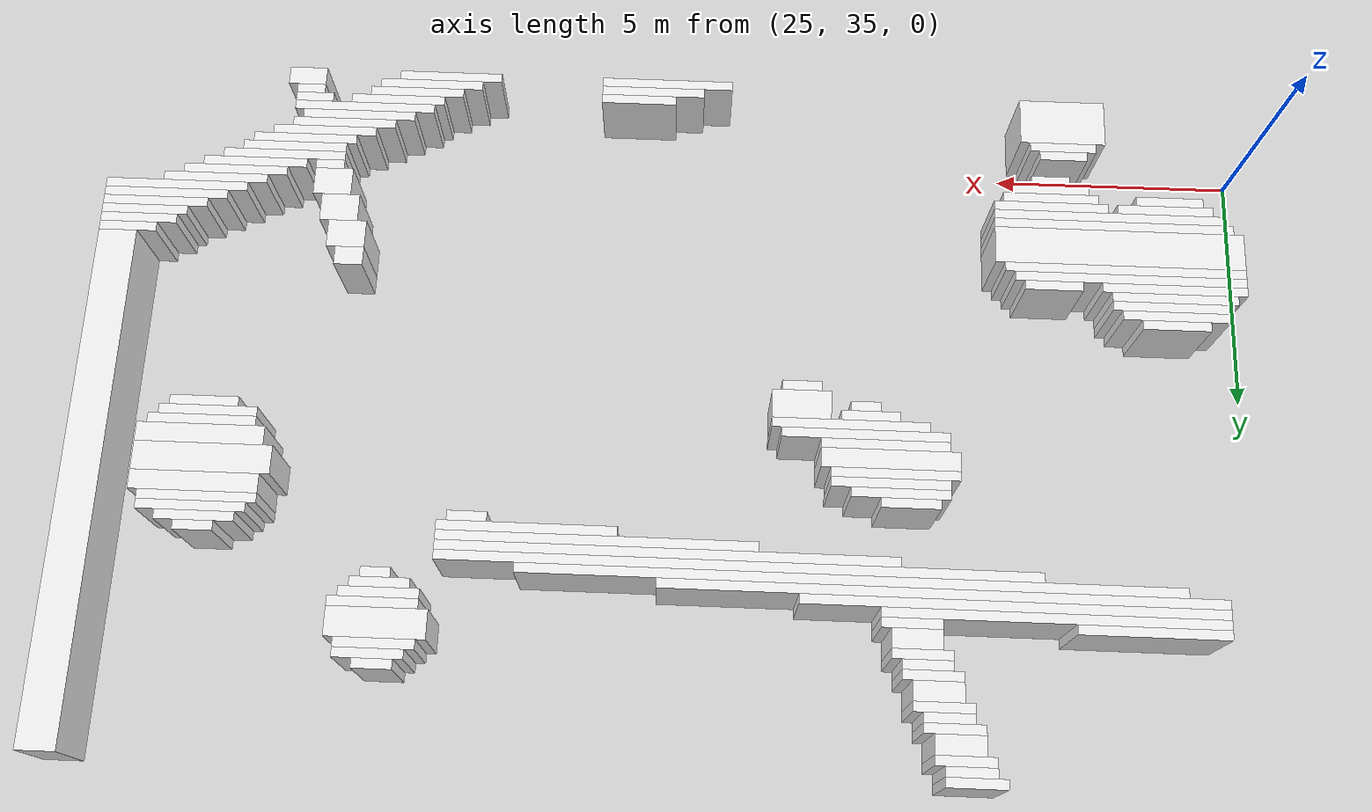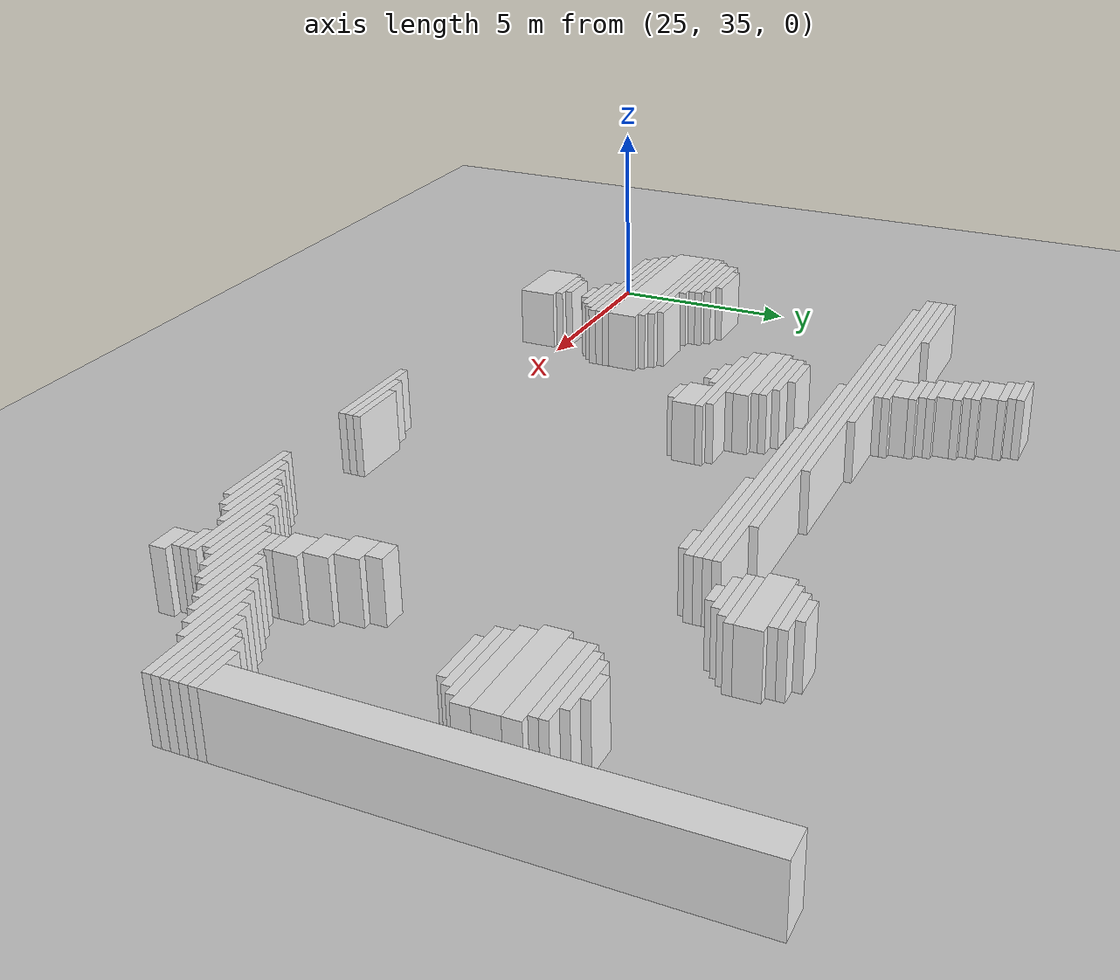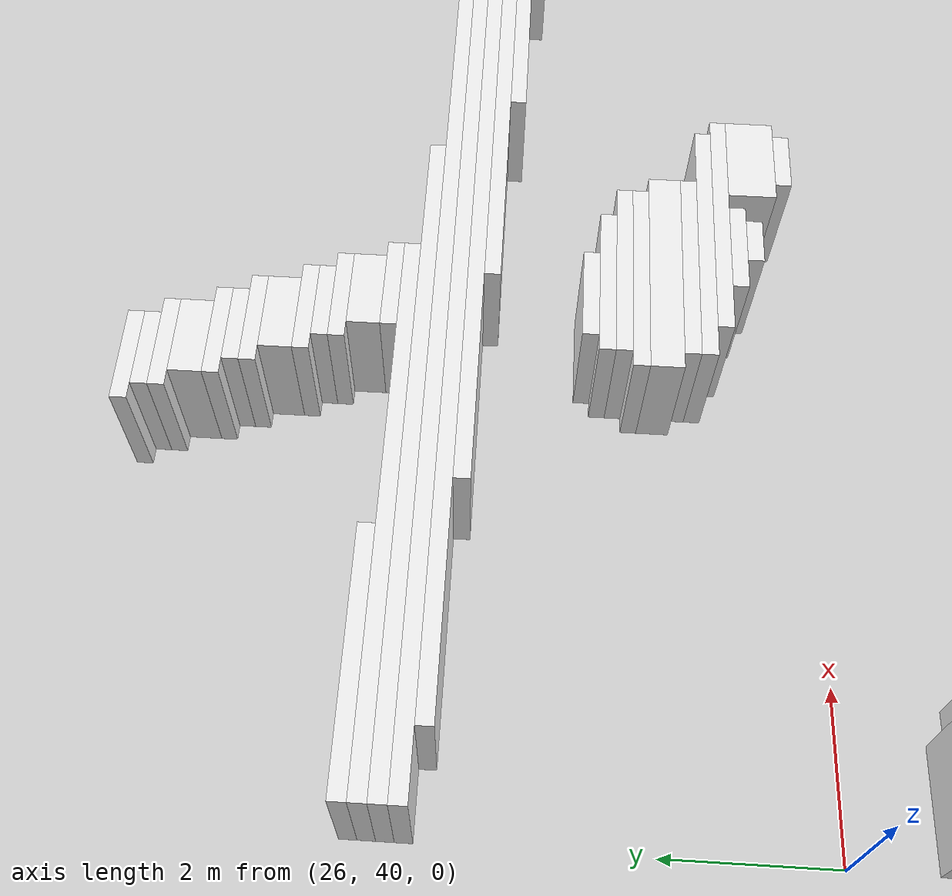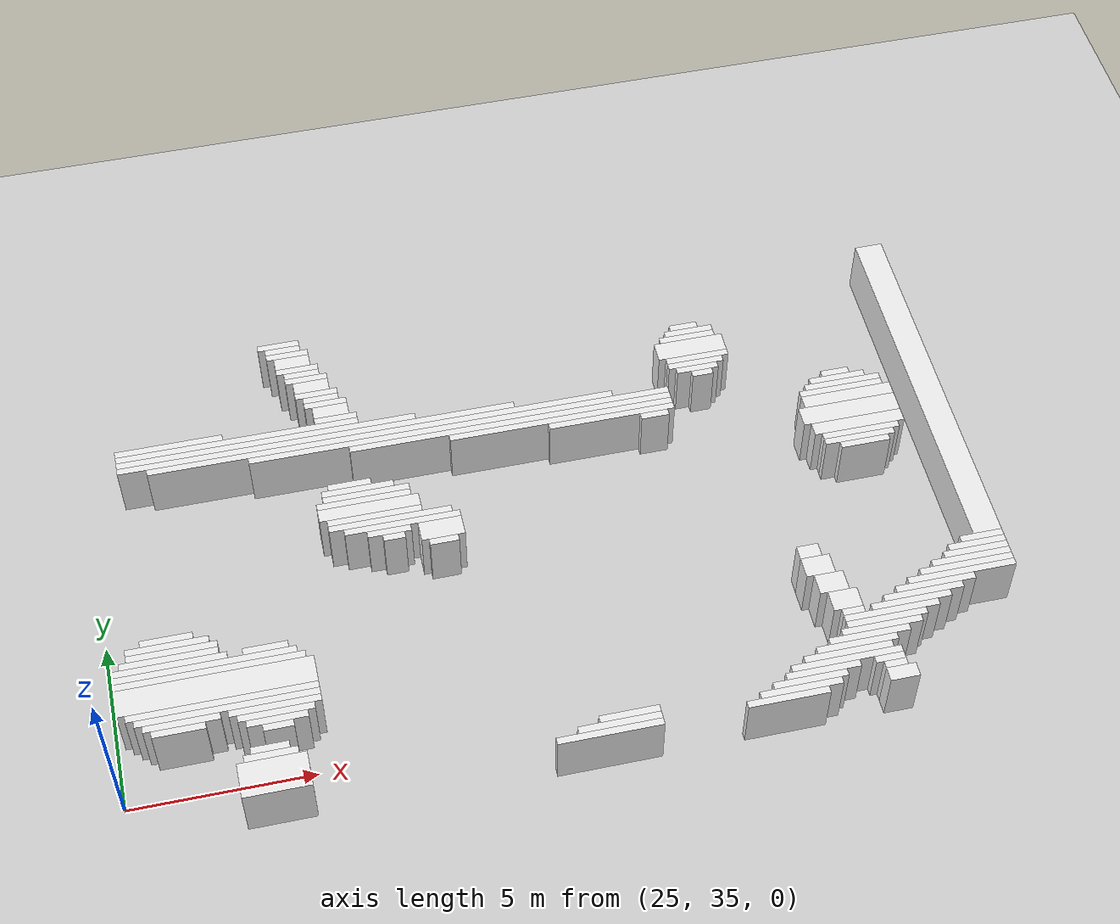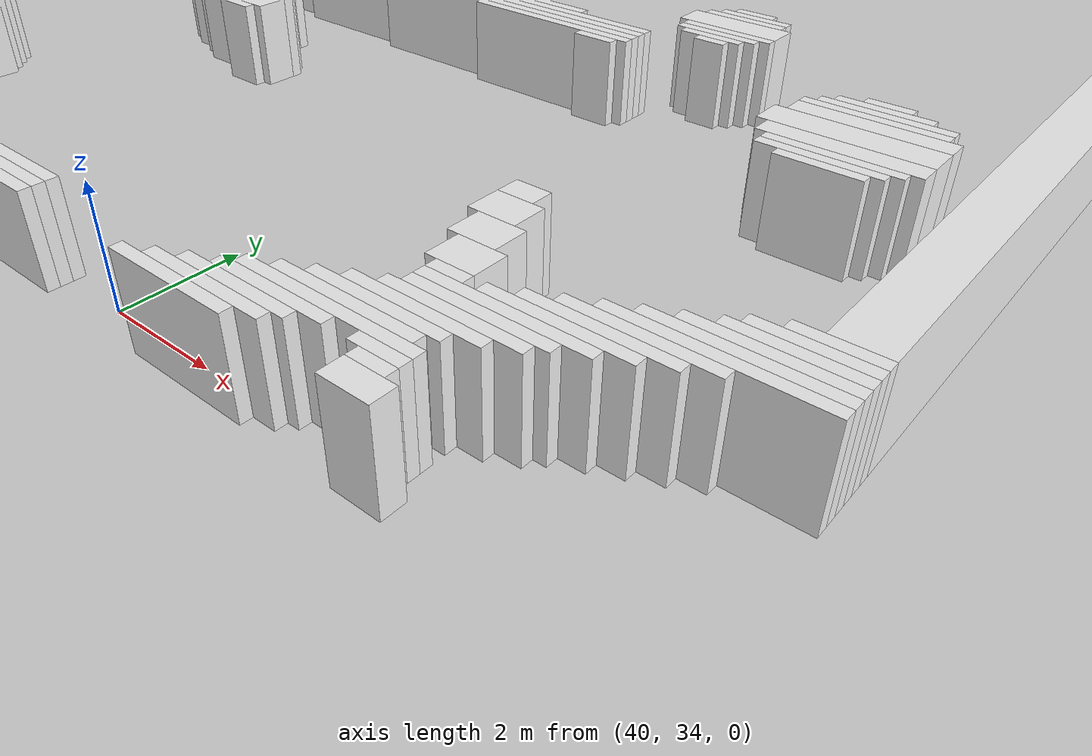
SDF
<sdf version="1.7">
 <world name="default">
  <model name="ground_plane">
   <static>1</static>
   <link name="link">
    <collision name="collision">
     <geometry><plane><normal>0 0 1</normal><size>120 120</size></plane></geometry>
    </collision>
    <visual name="visual">
     <geometry><plane><normal>0 0 1</normal><size>120 120</size></plane></geometry>
     <material>
      <script><uri>file://media/materials/scripts/gazebo.material</uri><name>Gazebo/Grey</name></script>
     </material>
    </visual>
   </link>
  </model>
  <model name="random_complex_01_model">
   <static>1</static>
   <link name="obs_6">
    <pose>31.0000 48.3000 0.8000 0 0 0</pose>
    <collision name="obs_6_col"><geometry><box><size>1.2000 0.2000 1.6000</size></box></geometry></collision>
    <visual name="obs_6_vis">
     <geometry><box><size>1.2000 0.2000 1.6000</size></box></geometry>
     <material>
      <script><uri>file://media/materials/scripts/gazebo.material</uri><name>Gazebo/White</name></script>
     </material>
    </visual>
   </link>
   <link name="obs_13">
    <pose>31.1000 48.1000 0.8000 0 0 0</pose>
    <collision name="obs_13_col"><geometry><box><size>1.0000 0.2000 1.6000</size></box></geometry></collision>
    <visual name="obs_13_vis">
     <geometry><box><size>1.0000 0.2000 1.6000</size></box></geometry>
     <material>
      <script><uri>file://media/materials/scripts/gazebo.material</uri><name>Gazebo/White</name></script>
     </material>
    </visual>
   </link>
   <link name="obs_21">
    <pose>31.2000 47.9000 0.8000 0 0 0</pose>
    <collision name="obs_21_col"><geometry><box><size>1.2000 0.2000 1.6000</size></box></geometry></collision>
    <visual name="obs_21_vis">
     <geometry><box><size>1.2000 0.2000 1.6000</size></box></geometry>
     <material>
      <script><uri>file://media/materials/scripts/gazebo.material</uri><name>Gazebo/White</name></script>
     </material>
    </visual>
   </link>
   <link name="obs_28">
    <pose>31.3000 47.6000 0.8000 0 0 0</pose>
    <collision name="obs_28_col"><geometry><box><size>1.0000 0.4000 1.6000</size></box></geometry></collision>
    <visual name="obs_28_vis">
     <geometry><box><size>1.0000 0.4000 1.6000</size></box></geometry>
     <material>
      <script><uri>file://media/materials/scripts/gazebo.material</uri><name>Gazebo/White</name></script>
     </material>
    </visual>
   </link>
   <link name="obs_41">
    <pose>31.4000 47.3000 0.8000 0 0 0</pose>
    <collision name="obs_41_col"><geometry><box><size>1.2000 0.2000 1.6000</size></box></geometry></collision>
    <visual name="obs_41_vis">
     <geometry><box><size>1.2000 0.2000 1.6000</size></box></geometry>
     <material>
      <script><uri>file://media/materials/scripts/gazebo.material</uri><name>Gazebo/White</name></script>
     </material>
    </visual>
   </link>
   <link name="obs_47">
    <pose>31.5000 47.1000 0.8000 0 0 0</pose>
    <collision name="obs_47_col"><geometry><box><size>1.0000 0.2000 1.6000</size></box></geometry></collision>
    <visual name="obs_47_vis">
     <geometry><box><size>1.0000 0.2000 1.6000</size></box></geometry>
     <material>
      <script><uri>file://media/materials/scripts/gazebo.material</uri><name>Gazebo/White</name></script>
     </material>
    </visual>
   </link>
   <link name="obs_54">
    <pose>31.6000 46.9000 0.8000 0 0 0</pose>
    <collision name="obs_54_col"><geometry><box><size>1.2000 0.2000 1.6000</size></box></geometry></collision>
    <visual name="obs_54_vis">
     <geometry><box><size>1.2000 0.2000 1.6000</size></box></geometry>
     <material>
      <script><uri>file://media/materials/scripts/gazebo.material</uri><name>Gazebo/White</name></script>
     </material>
    </visual>
   </link>
   <link name="obs_62">
    <pose>31.7000 46.6000 0.8000 0 0 0</pose>
    <collision name="obs_62_col"><geometry><box><size>1.0000 0.4000 1.6000</size></box></geometry></collision>
    <visual name="obs_62_vis">
     <geometry><box><size>1.0000 0.4000 1.6000</size></box></geometry>
     <material>
      <script><uri>file://media/materials/scripts/gazebo.material</uri><name>Gazebo/White</name></script>
     </material>
    </visual>
   </link>
   <link name="obs_68">
    <pose>42.6000 46.5000 0.8000 0 0 0</pose>
    <collision name="obs_68_col"><geometry><box><size>0.8000 0.2000 1.6000</size></box></geometry></collision>
    <visual name="obs_68_vis">
     <geometry><box><size>0.8000 0.2000 1.6000</size></box></geometry>
     <material>
      <script><uri>file://media/materials/scripts/gazebo.material</uri><name>Gazebo/White</name></script>
     </material>
    </visual>
   </link>
   <link name="obs_75">
    <pose>31.8000 46.3000 0.8000 0 0 0</pose>
    <collision name="obs_75_col"><geometry><box><size>1.2000 0.2000 1.6000</size></box></geometry></collision>
    <visual name="obs_75_vis">
     <geometry><box><size>1.2000 0.2000 1.6000</size></box></geometry>
     <material>
      <script><uri>file://media/materials/scripts/gazebo.material</uri><name>Gazebo/White</name></script>
     </material>
    </visual>
   </link>
   <link name="obs_76">
    <pose>42.7000 46.3000 0.8000 0 0 0</pose>
    <collision name="obs_76_col"><geometry><box><size>1.4000 0.2000 1.6000</size></box></geometry></collision>
    <visual name="obs_76_vis">
     <geometry><box><size>1.4000 0.2000 1.6000</size></box></geometry>
     <material>
      <script><uri>file://media/materials/scripts/gazebo.material</uri><name>Gazebo/White</name></script>
     </material>
    </visual>
   </link>
   <link name="obs_85">
    <pose>31.9000 46.1000 0.8000 0 0 0</pose>
    <collision name="obs_85_col"><geometry><box><size>1.0000 0.2000 1.6000</size></box></geometry></collision>
    <visual name="obs_85_vis">
     <geometry><box><size>1.0000 0.2000 1.6000</size></box></geometry>
     <material>
      <script><uri>file://media/materials/scripts/gazebo.material</uri><name>Gazebo/White</name></script>
     </material>
    </visual>
   </link>
   <link name="obs_86">
    <pose>42.6000 46.1000 0.8000 0 0 0</pose>
    <collision name="obs_86_col"><geometry><box><size>1.6000 0.2000 1.6000</size></box></geometry></collision>
    <visual name="obs_86_vis">
     <geometry><box><size>1.6000 0.2000 1.6000</size></box></geometry>
     <material>
      <script><uri>file://media/materials/scripts/gazebo.material</uri><name>Gazebo/White</name></script>
     </material>
    </visual>
   </link>
   <link name="obs_96">
    <pose>32.0000 45.9000 0.8000 0 0 0</pose>
    <collision name="obs_96_col"><geometry><box><size>1.2000 0.2000 1.6000</size></box></geometry></collision>
    <visual name="obs_96_vis">
     <geometry><box><size>1.2000 0.2000 1.6000</size></box></geometry>
     <material>
      <script><uri>file://media/materials/scripts/gazebo.material</uri><name>Gazebo/White</name></script>
     </material>
    </visual>
   </link>
   <link name="obs_103">
    <pose>42.6000 45.7000 0.8000 0 0 0</pose>
    <collision name="obs_103_col"><geometry><box><size>2.0000 0.6000 1.6000</size></box></geometry></collision>
    <visual name="obs_103_vis">
     <geometry><box><size>2.0000 0.6000 1.6000</size></box></geometry>
     <material>
      <script><uri>file://media/materials/scripts/gazebo.material</uri><name>Gazebo/White</name></script>
     </material>
    </visual>
   </link>
   <link name="obs_106">
    <pose>32.1000 45.6000 0.8000 0 0 0</pose>
    <collision name="obs_106_col"><geometry><box><size>1.0000 0.4000 1.6000</size></box></geometry></collision>
    <visual name="obs_106_vis">
     <geometry><box><size>1.0000 0.4000 1.6000</size></box></geometry>
     <material>
      <script><uri>file://media/materials/scripts/gazebo.material</uri><name>Gazebo/White</name></script>
     </material>
    </visual>
   </link>
   <link name="obs_122">
    <pose>27.5000 45.3000 0.8000 0 0 0</pose>
    <collision name="obs_122_col"><geometry><box><size>3.0000 0.2000 1.6000</size></box></geometry></collision>
    <visual name="obs_122_vis">
     <geometry><box><size>3.0000 0.2000 1.6000</size></box></geometry>
     <material>
      <script><uri>file://media/materials/scripts/gazebo.material</uri><name>Gazebo/White</name></script>
     </material>
    </visual>
   </link>
   <link name="obs_123">
    <pose>32.2000 45.3000 0.8000 0 0 0</pose>
    <collision name="obs_123_col"><geometry><box><size>1.2000 0.2000 1.6000</size></box></geometry></collision>
    <visual name="obs_123_vis">
     <geometry><box><size>1.2000 0.2000 1.6000</size></box></geometry>
     <material>
      <script><uri>file://media/materials/scripts/gazebo.material</uri><name>Gazebo/White</name></script>
     </material>
    </visual>
   </link>
   <link name="obs_124">
    <pose>42.7000 45.3000 0.8000 0 0 0</pose>
    <collision name="obs_124_col"><geometry><box><size>1.8000 0.2000 1.6000</size></box></geometry></collision>
    <visual name="obs_124_vis">
     <geometry><box><size>1.8000 0.2000 1.6000</size></box></geometry>
     <material>
      <script><uri>file://media/materials/scripts/gazebo.material</uri><name>Gazebo/White</name></script>
     </material>
    </visual>
   </link>
   <link name="obs_132">
    <pose>29.4000 45.1000 0.8000 0 0 0</pose>
    <collision name="obs_132_col"><geometry><box><size>6.8000 0.2000 1.6000</size></box></geometry></collision>
    <visual name="obs_132_vis">
     <geometry><box><size>6.8000 0.2000 1.6000</size></box></geometry>
     <material>
      <script><uri>file://media/materials/scripts/gazebo.material</uri><name>Gazebo/White</name></script>
     </material>
    </visual>
   </link>
   <link name="obs_133">
    <pose>42.6000 45.1000 0.8000 0 0 0</pose>
    <collision name="obs_133_col"><geometry><box><size>1.6000 0.2000 1.6000</size></box></geometry></collision>
    <visual name="obs_133_vis">
     <geometry><box><size>1.6000 0.2000 1.6000</size></box></geometry>
     <material>
      <script><uri>file://media/materials/scripts/gazebo.material</uri><name>Gazebo/White</name></script>
     </material>
    </visual>
   </link>
   <link name="obs_140">
    <pose>30.2000 44.9000 0.8000 0 0 0</pose>
    <collision name="obs_140_col"><geometry><box><size>8.4000 0.2000 1.6000</size></box></geometry></collision>
    <visual name="obs_140_vis">
     <geometry><box><size>8.4000 0.2000 1.6000</size></box></geometry>
     <material>
      <script><uri>file://media/materials/scripts/gazebo.material</uri><name>Gazebo/White</name></script>
     </material>
    </visual>
   </link>
   <link name="obs_141">
    <pose>42.6000 44.9000 0.8000 0 0 0</pose>
    <collision name="obs_141_col"><geometry><box><size>1.2000 0.2000 1.6000</size></box></geometry></collision>
    <visual name="obs_141_vis">
     <geometry><box><size>1.2000 0.2000 1.6000</size></box></geometry>
     <material>
      <script><uri>file://media/materials/scripts/gazebo.material</uri><name>Gazebo/White</name></script>
     </material>
    </visual>
   </link>
   <link name="obs_149">
    <pose>31.6000 44.7000 0.8000 0 0 0</pose>
    <collision name="obs_149_col"><geometry><box><size>11.2000 0.2000 1.6000</size></box></geometry></collision>
    <visual name="obs_149_vis">
     <geometry><box><size>11.2000 0.2000 1.6000</size></box></geometry>
     <material>
      <script><uri>file://media/materials/scripts/gazebo.material</uri><name>Gazebo/White</name></script>
     </material>
    </visual>
   </link>
   <link name="obs_150">
    <pose>42.7000 44.7000 0.8000 0 0 0</pose>
    <collision name="obs_150_col"><geometry><box><size>0.6000 0.2000 1.6000</size></box></geometry></collision>
    <visual name="obs_150_vis">
     <geometry><box><size>0.6000 0.2000 1.6000</size></box></geometry>
     <material>
      <script><uri>file://media/materials/scripts/gazebo.material</uri><name>Gazebo/White</name></script>
     </material>
    </visual>
   </link>
   <link name="obs_157">
    <pose>33.4000 44.5000 0.8000 0 0 0</pose>
    <collision name="obs_157_col"><geometry><box><size>13.2000 0.2000 1.6000</size></box></geometry></collision>
    <visual name="obs_157_vis">
     <geometry><box><size>13.2000 0.2000 1.6000</size></box></geometry>
     <material>
      <script><uri>file://media/materials/scripts/gazebo.material</uri><name>Gazebo/White</name></script>
     </material>
    </visual>
   </link>
   <link name="obs_163">
    <pose>35.6000 44.3000 0.8000 0 0 0</pose>
    <collision name="obs_163_col"><geometry><box><size>12.0000 0.2000 1.6000</size></box></geometry></collision>
    <visual name="obs_163_vis">
     <geometry><box><size>12.0000 0.2000 1.6000</size></box></geometry>
     <material>
      <script><uri>file://media/materials/scripts/gazebo.material</uri><name>Gazebo/White</name></script>
     </material>
    </visual>
   </link>
   <link name="obs_169">
    <pose>37.0000 44.1000 0.8000 0 0 0</pose>
    <collision name="obs_169_col"><geometry><box><size>9.2000 0.2000 1.6000</size></box></geometry></collision>
    <visual name="obs_169_vis">
     <geometry><box><size>9.2000 0.2000 1.6000</size></box></geometry>
     <material>
      <script><uri>file://media/materials/scripts/gazebo.material</uri><name>Gazebo/White</name></script>
     </material>
    </visual>
   </link>
   <link name="obs_177">
    <pose>38.4000 43.9000 0.8000 0 0 0</pose>
    <collision name="obs_177_col"><geometry><box><size>6.4000 0.2000 1.6000</size></box></geometry></collision>
    <visual name="obs_177_vis">
     <geometry><box><size>6.4000 0.2000 1.6000</size></box></geometry>
     <material>
      <script><uri>file://media/materials/scripts/gazebo.material</uri><name>Gazebo/White</name></script>
     </material>
    </visual>
   </link>
   <link name="obs_178">
    <pose>46.4000 43.9000 0.8000 0 0 0</pose>
    <collision name="obs_178_col"><geometry><box><size>0.8000 0.2000 1.6000</size></box></geometry></collision>
    <visual name="obs_178_vis">
     <geometry><box><size>0.8000 0.2000 1.6000</size></box></geometry>
     <material>
      <script><uri>file://media/materials/scripts/gazebo.material</uri><name>Gazebo/White</name></script>
     </material>
    </visual>
   </link>
   <link name="obs_184">
    <pose>39.8000 43.7000 0.8000 0 0 0</pose>
    <collision name="obs_184_col"><geometry><box><size>3.6000 0.2000 1.6000</size></box></geometry></collision>
    <visual name="obs_184_vis">
     <geometry><box><size>3.6000 0.2000 1.6000</size></box></geometry>
     <material>
      <script><uri>file://media/materials/scripts/gazebo.material</uri><name>Gazebo/White</name></script>
     </material>
    </visual>
   </link>
   <link name="obs_185">
    <pose>46.4000 43.7000 0.8000 0 0 0</pose>
    <collision name="obs_185_col"><geometry><box><size>1.6000 0.2000 1.6000</size></box></geometry></collision>
    <visual name="obs_185_vis">
     <geometry><box><size>1.6000 0.2000 1.6000</size></box></geometry>
     <material>
      <script><uri>file://media/materials/scripts/gazebo.material</uri><name>Gazebo/White</name></script>
     </material>
    </visual>
   </link>
   <link name="obs_191">
    <pose>41.0000 43.5000 0.8000 0 0 0</pose>
    <collision name="obs_191_col"><geometry><box><size>0.8000 0.2000 1.6000</size></box></geometry></collision>
    <visual name="obs_191_vis">
     <geometry><box><size>0.8000 0.2000 1.6000</size></box></geometry>
     <material>
      <script><uri>file://media/materials/scripts/gazebo.material</uri><name>Gazebo/White</name></script>
     </material>
    </visual>
   </link>
   <link name="obs_192">
    <pose>46.5000 43.5000 0.8000 0 0 0</pose>
    <collision name="obs_192_col"><geometry><box><size>2.2000 0.2000 1.6000</size></box></geometry></collision>
    <visual name="obs_192_vis">
     <geometry><box><size>2.2000 0.2000 1.6000</size></box></geometry>
     <material>
      <script><uri>file://media/materials/scripts/gazebo.material</uri><name>Gazebo/White</name></script>
     </material>
    </visual>
   </link>
   <link name="obs_198">
    <pose>46.4000 43.3000 0.8000 0 0 0</pose>
    <collision name="obs_198_col"><geometry><box><size>2.4000 0.2000 1.6000</size></box></geometry></collision>
    <visual name="obs_198_vis">
     <geometry><box><size>2.4000 0.2000 1.6000</size></box></geometry>
     <material>
      <script><uri>file://media/materials/scripts/gazebo.material</uri><name>Gazebo/White</name></script>
     </material>
    </visual>
   </link>
   <link name="obs_205">
    <pose>46.5000 43.0000 0.8000 0 0 0</pose>
    <collision name="obs_205_col"><geometry><box><size>2.6000 0.4000 1.6000</size></box></geometry></collision>
    <visual name="obs_205_vis">
     <geometry><box><size>2.6000 0.4000 1.6000</size></box></geometry>
     <material>
      <script><uri>file://media/materials/scripts/gazebo.material</uri><name>Gazebo/White</name></script>
     </material>
    </visual>
   </link>
   <link name="obs_210">
    <pose>32.2000 42.9000 0.8000 0 0 0</pose>
    <collision name="obs_210_col"><geometry><box><size>1.2000 0.2000 1.6000</size></box></geometry></collision>
    <visual name="obs_210_vis">
     <geometry><box><size>1.2000 0.2000 1.6000</size></box></geometry>
     <material>
      <script><uri>file://media/materials/scripts/gazebo.material</uri><name>Gazebo/White</name></script>
     </material>
    </visual>
   </link>
   <link name="obs_217">
    <pose>32.4000 42.7000 0.8000 0 0 0</pose>
    <collision name="obs_217_col"><geometry><box><size>2.0000 0.2000 1.6000</size></box></geometry></collision>
    <visual name="obs_217_vis">
     <geometry><box><size>2.0000 0.2000 1.6000</size></box></geometry>
     <material>
      <script><uri>file://media/materials/scripts/gazebo.material</uri><name>Gazebo/White</name></script>
     </material>
    </visual>
   </link>
   <link name="obs_223">
    <pose>32.6000 42.5000 0.8000 0 0 0</pose>
    <collision name="obs_223_col"><geometry><box><size>2.4000 0.2000 1.6000</size></box></geometry></collision>
    <visual name="obs_223_vis">
     <geometry><box><size>2.4000 0.2000 1.6000</size></box></geometry>
     <material>
      <script><uri>file://media/materials/scripts/gazebo.material</uri><name>Gazebo/White</name></script>
     </material>
    </visual>
   </link>
   <link name="obs_224">
    <pose>46.4000 42.5000 0.8000 0 0 0</pose>
    <collision name="obs_224_col"><geometry><box><size>2.8000 0.6000 1.6000</size></box></geometry></collision>
    <visual name="obs_224_vis">
     <geometry><box><size>2.8000 0.6000 1.6000</size></box></geometry>
     <material>
      <script><uri>file://media/materials/scripts/gazebo.material</uri><name>Gazebo/White</name></script>
     </material>
    </visual>
   </link>
   <link name="obs_230">
    <pose>32.5000 42.3000 0.8000 0 0 0</pose>
    <collision name="obs_230_col"><geometry><box><size>2.6000 0.2000 1.6000</size></box></geometry></collision>
    <visual name="obs_230_vis">
     <geometry><box><size>2.6000 0.2000 1.6000</size></box></geometry>
     <material>
      <script><uri>file://media/materials/scripts/gazebo.material</uri><name>Gazebo/White</name></script>
     </material>
    </visual>
   </link>
   <link name="obs_236">
    <pose>32.6000 42.0000 0.8000 0 0 0</pose>
    <collision name="obs_236_col"><geometry><box><size>2.8000 0.4000 1.6000</size></box></geometry></collision>
    <visual name="obs_236_vis">
     <geometry><box><size>2.8000 0.4000 1.6000</size></box></geometry>
     <material>
      <script><uri>file://media/materials/scripts/gazebo.material</uri><name>Gazebo/White</name></script>
     </material>
    </visual>
   </link>
   <link name="obs_237">
    <pose>46.5000 42.0000 0.8000 0 0 0</pose>
    <collision name="obs_237_col"><geometry><box><size>2.6000 0.4000 1.6000</size></box></geometry></collision>
    <visual name="obs_237_vis">
     <geometry><box><size>2.6000 0.4000 1.6000</size></box></geometry>
     <material>
      <script><uri>file://media/materials/scripts/gazebo.material</uri><name>Gazebo/White</name></script>
     </material>
    </visual>
   </link>
   <link name="obs_246">
    <pose>32.7000 41.7000 0.8000 0 0 0</pose>
    <collision name="obs_246_col"><geometry><box><size>2.6000 0.2000 1.6000</size></box></geometry></collision>
    <visual name="obs_246_vis">
     <geometry><box><size>2.6000 0.2000 1.6000</size></box></geometry>
     <material>
      <script><uri>file://media/materials/scripts/gazebo.material</uri><name>Gazebo/White</name></script>
     </material>
    </visual>
   </link>
   <link name="obs_247">
    <pose>46.5000 41.7000 0.8000 0 0 0</pose>
    <collision name="obs_247_col"><geometry><box><size>2.2000 0.2000 1.6000</size></box></geometry></collision>
    <visual name="obs_247_vis">
     <geometry><box><size>2.2000 0.2000 1.6000</size></box></geometry>
     <material>
      <script><uri>file://media/materials/scripts/gazebo.material</uri><name>Gazebo/White</name></script>
     </material>
    </visual>
   </link>
   <link name="obs_254">
    <pose>33.1000 41.5000 0.8000 0 0 0</pose>
    <collision name="obs_254_col"><geometry><box><size>3.4000 0.2000 1.6000</size></box></geometry></collision>
    <visual name="obs_254_vis">
     <geometry><box><size>3.4000 0.2000 1.6000</size></box></geometry>
     <material>
      <script><uri>file://media/materials/scripts/gazebo.material</uri><name>Gazebo/White</name></script>
     </material>
    </visual>
   </link>
   <link name="obs_255">
    <pose>46.4000 41.5000 0.8000 0 0 0</pose>
    <collision name="obs_255_col"><geometry><box><size>2.0000 0.2000 1.6000</size></box></geometry></collision>
    <visual name="obs_255_vis">
     <geometry><box><size>2.0000 0.2000 1.6000</size></box></geometry>
     <material>
      <script><uri>file://media/materials/scripts/gazebo.material</uri><name>Gazebo/White</name></script>
     </material>
    </visual>
   </link>
   <link name="obs_262">
    <pose>33.4000 41.3000 0.8000 0 0 0</pose>
    <collision name="obs_262_col"><geometry><box><size>3.2000 0.2000 1.6000</size></box></geometry></collision>
    <visual name="obs_262_vis">
     <geometry><box><size>3.2000 0.2000 1.6000</size></box></geometry>
     <material>
      <script><uri>file://media/materials/scripts/gazebo.material</uri><name>Gazebo/White</name></script>
     </material>
    </visual>
   </link>
   <link name="obs_263">
    <pose>46.5000 41.3000 0.8000 0 0 0</pose>
    <collision name="obs_263_col"><geometry><box><size>1.4000 0.2000 1.6000</size></box></geometry></collision>
    <visual name="obs_263_vis">
     <geometry><box><size>1.4000 0.2000 1.6000</size></box></geometry>
     <material>
      <script><uri>file://media/materials/scripts/gazebo.material</uri><name>Gazebo/White</name></script>
     </material>
    </visual>
   </link>
   <link name="obs_271">
    <pose>33.0000 41.1000 0.8000 0 0 0</pose>
    <collision name="obs_271_col"><geometry><box><size>1.2000 0.2000 1.6000</size></box></geometry></collision>
    <visual name="obs_271_vis">
     <geometry><box><size>1.2000 0.2000 1.6000</size></box></geometry>
     <material>
      <script><uri>file://media/materials/scripts/gazebo.material</uri><name>Gazebo/White</name></script>
     </material>
    </visual>
   </link>
   <link name="obs_277">
    <pose>33.1000 40.9000 0.8000 0 0 0</pose>
    <collision name="obs_277_col"><geometry><box><size>0.6000 0.2000 1.6000</size></box></geometry></collision>
    <visual name="obs_277_vis">
     <geometry><box><size>0.6000 0.2000 1.6000</size></box></geometry>
     <material>
      <script><uri>file://media/materials/scripts/gazebo.material</uri><name>Gazebo/White</name></script>
     </material>
    </visual>
   </link>
   <link name="obs_279">
    <pose>34.4000 40.9000 0.8000 0 0 0</pose>
    <collision name="obs_279_col"><geometry><box><size>1.2000 0.6000 1.6000</size></box></geometry></collision>
    <visual name="obs_279_vis">
     <geometry><box><size>1.2000 0.6000 1.6000</size></box></geometry>
     <material>
      <script><uri>file://media/materials/scripts/gazebo.material</uri><name>Gazebo/White</name></script>
     </material>
    </visual>
   </link>
   <link name="obs_288">
    <pose>34.4000 40.5000 0.8000 0 0 0</pose>
    <collision name="obs_288_col"><geometry><box><size>0.8000 0.2000 1.6000</size></box></geometry></collision>
    <visual name="obs_288_vis">
     <geometry><box><size>0.8000 0.2000 1.6000</size></box></geometry>
     <material>
      <script><uri>file://media/materials/scripts/gazebo.material</uri><name>Gazebo/White</name></script>
     </material>
    </visual>
   </link>
   <link name="obs_317">
    <pose>26.7000 38.9000 0.8000 0 0 0</pose>
    <collision name="obs_317_col"><geometry><box><size>1.4000 0.2000 1.6000</size></box></geometry></collision>
    <visual name="obs_317_vis">
     <geometry><box><size>1.4000 0.2000 1.6000</size></box></geometry>
     <material>
      <script><uri>file://media/materials/scripts/gazebo.material</uri><name>Gazebo/White</name></script>
     </material>
    </visual>
   </link>
   <link name="obs_319">
    <pose>26.7000 38.7000 0.8000 0 0 0</pose>
    <collision name="obs_319_col"><geometry><box><size>2.2000 0.2000 1.6000</size></box></geometry></collision>
    <visual name="obs_319_vis">
     <geometry><box><size>2.2000 0.2000 1.6000</size></box></geometry>
     <material>
      <script><uri>file://media/materials/scripts/gazebo.material</uri><name>Gazebo/White</name></script>
     </material>
    </visual>
   </link>
   <link name="obs_323">
    <pose>26.8000 38.5000 0.8000 0 0 0</pose>
    <collision name="obs_323_col"><geometry><box><size>2.4000 0.2000 1.6000</size></box></geometry></collision>
    <visual name="obs_323_vis">
     <geometry><box><size>2.4000 0.2000 1.6000</size></box></geometry>
     <material>
      <script><uri>file://media/materials/scripts/gazebo.material</uri><name>Gazebo/White</name></script>
     </material>
    </visual>
   </link>
   <link name="obs_328">
    <pose>26.7000 38.3000 0.8000 0 0 0</pose>
    <collision name="obs_328_col"><geometry><box><size>2.6000 0.2000 1.6000</size></box></geometry></collision>
    <visual name="obs_328_vis">
     <geometry><box><size>2.6000 0.2000 1.6000</size></box></geometry>
     <material>
      <script><uri>file://media/materials/scripts/gazebo.material</uri><name>Gazebo/White</name></script>
     </material>
    </visual>
   </link>
   <link name="obs_334">
    <pose>26.7000 38.1000 0.8000 0 0 0</pose>
    <collision name="obs_334_col"><geometry><box><size>3.0000 0.2000 1.6000</size></box></geometry></collision>
    <visual name="obs_334_vis">
     <geometry><box><size>3.0000 0.2000 1.6000</size></box></geometry>
     <material>
      <script><uri>file://media/materials/scripts/gazebo.material</uri><name>Gazebo/White</name></script>
     </material>
    </visual>
   </link>
   <link name="obs_335">
    <pose>29.2000 38.1000 0.8000 0 0 0</pose>
    <collision name="obs_335_col"><geometry><box><size>1.2000 0.2000 1.6000</size></box></geometry></collision>
    <visual name="obs_335_vis">
     <geometry><box><size>1.2000 0.2000 1.6000</size></box></geometry>
     <material>
      <script><uri>file://media/materials/scripts/gazebo.material</uri><name>Gazebo/White</name></script>
     </material>
    </visual>
   </link>
   <link name="obs_338">
    <pose>43.9000 38.0000 0.8000 0 0 0</pose>
    <collision name="obs_338_col"><geometry><box><size>0.6000 0.4000 1.6000</size></box></geometry></collision>
    <visual name="obs_338_vis">
     <geometry><box><size>0.6000 0.4000 1.6000</size></box></geometry>
     <material>
      <script><uri>file://media/materials/scripts/gazebo.material</uri><name>Gazebo/White</name></script>
     </material>
    </visual>
   </link>
   <link name="obs_343">
    <pose>27.6000 37.9000 0.8000 0 0 0</pose>
    <collision name="obs_343_col"><geometry><box><size>4.8000 0.2000 1.6000</size></box></geometry></collision>
    <visual name="obs_343_vis">
     <geometry><box><size>4.8000 0.2000 1.6000</size></box></geometry>
     <material>
      <script><uri>file://media/materials/scripts/gazebo.material</uri><name>Gazebo/White</name></script>
     </material>
    </visual>
   </link>
   <link name="obs_344">
    <pose>48.8000 43.0000 0.8000 0 0 0</pose>
    <collision name="obs_344_col"><geometry><box><size>0.8000 10.8000 1.6000</size></box></geometry></collision>
    <visual name="obs_344_vis">
     <geometry><box><size>0.8000 10.8000 1.6000</size></box></geometry>
     <material>
      <script><uri>file://media/materials/scripts/gazebo.material</uri><name>Gazebo/White</name></script>
     </material>
    </visual>
   </link>
   <link name="obs_348">
    <pose>27.7000 37.7000 0.8000 0 0 0</pose>
    <collision name="obs_348_col"><geometry><box><size>5.0000 0.2000 1.6000</size></box></geometry></collision>
    <visual name="obs_348_vis">
     <geometry><box><size>5.0000 0.2000 1.6000</size></box></geometry>
     <material>
      <script><uri>file://media/materials/scripts/gazebo.material</uri><name>Gazebo/White</name></script>
     </material>
    </visual>
   </link>
   <link name="obs_357">
    <pose>48.6000 37.5000 0.8000 0 0 0</pose>
    <collision name="obs_357_col"><geometry><box><size>1.2000 0.2000 1.6000</size></box></geometry></collision>
    <visual name="obs_357_vis">
     <geometry><box><size>1.2000 0.2000 1.6000</size></box></geometry>
     <material>
      <script><uri>file://media/materials/scripts/gazebo.material</uri><name>Gazebo/White</name></script>
     </material>
    </visual>
   </link>
   <link name="obs_359">
    <pose>44.0000 37.5000 0.8000 0 0 0</pose>
    <collision name="obs_359_col"><geometry><box><size>0.8000 0.6000 1.6000</size></box></geometry></collision>
    <visual name="obs_359_vis">
     <geometry><box><size>0.8000 0.6000 1.6000</size></box></geometry>
     <material>
      <script><uri>file://media/materials/scripts/gazebo.material</uri><name>Gazebo/White</name></script>
     </material>
    </visual>
   </link>
   <link name="obs_364">
    <pose>48.4000 37.3000 0.8000 0 0 0</pose>
    <collision name="obs_364_col"><geometry><box><size>1.6000 0.2000 1.6000</size></box></geometry></collision>
    <visual name="obs_364_vis">
     <geometry><box><size>1.6000 0.2000 1.6000</size></box></geometry>
     <material>
      <script><uri>file://media/materials/scripts/gazebo.material</uri><name>Gazebo/White</name></script>
     </material>
    </visual>
   </link>
   <link name="obs_370">
    <pose>48.3000 37.1000 0.8000 0 0 0</pose>
    <collision name="obs_370_col"><geometry><box><size>1.8000 0.2000 1.6000</size></box></geometry></collision>
    <visual name="obs_370_vis">
     <geometry><box><size>1.8000 0.2000 1.6000</size></box></geometry>
     <material>
      <script><uri>file://media/materials/scripts/gazebo.material</uri><name>Gazebo/White</name></script>
     </material>
    </visual>
   </link>
   <link name="obs_371">
    <pose>27.8000 37.2000 0.8000 0 0 0</pose>
    <collision name="obs_371_col"><geometry><box><size>5.2000 0.8000 1.6000</size></box></geometry></collision>
    <visual name="obs_371_vis">
     <geometry><box><size>5.2000 0.8000 1.6000</size></box></geometry>
     <material>
      <script><uri>file://media/materials/scripts/gazebo.material</uri><name>Gazebo/White</name></script>
     </material>
    </visual>
   </link>
   <link name="obs_376">
    <pose>48.1000 36.9000 0.8000 0 0 0</pose>
    <collision name="obs_376_col"><geometry><box><size>2.2000 0.2000 1.6000</size></box></geometry></collision>
    <visual name="obs_376_vis">
     <geometry><box><size>2.2000 0.2000 1.6000</size></box></geometry>
     <material>
      <script><uri>file://media/materials/scripts/gazebo.material</uri><name>Gazebo/White</name></script>
     </material>
    </visual>
   </link>
   <link name="obs_377">
    <pose>44.2000 36.9000 0.8000 0 0 0</pose>
    <collision name="obs_377_col"><geometry><box><size>0.8000 0.6000 1.6000</size></box></geometry></collision>
    <visual name="obs_377_vis">
     <geometry><box><size>0.8000 0.6000 1.6000</size></box></geometry>
     <material>
      <script><uri>file://media/materials/scripts/gazebo.material</uri><name>Gazebo/White</name></script>
     </material>
    </visual>
   </link>
   <link name="obs_383">
    <pose>27.9000 36.7000 0.8000 0 0 0</pose>
    <collision name="obs_383_col"><geometry><box><size>5.0000 0.2000 1.6000</size></box></geometry></collision>
    <visual name="obs_383_vis">
     <geometry><box><size>5.0000 0.2000 1.6000</size></box></geometry>
     <material>
      <script><uri>file://media/materials/scripts/gazebo.material</uri><name>Gazebo/White</name></script>
     </material>
    </visual>
   </link>
   <link name="obs_384">
    <pose>47.9000 36.7000 0.8000 0 0 0</pose>
    <collision name="obs_384_col"><geometry><box><size>2.6000 0.2000 1.6000</size></box></geometry></collision>
    <visual name="obs_384_vis">
     <geometry><box><size>2.6000 0.2000 1.6000</size></box></geometry>
     <material>
      <script><uri>file://media/materials/scripts/gazebo.material</uri><name>Gazebo/White</name></script>
     </material>
    </visual>
   </link>
   <link name="obs_391">
    <pose>28.0000 36.5000 0.8000 0 0 0</pose>
    <collision name="obs_391_col"><geometry><box><size>4.8000 0.2000 1.6000</size></box></geometry></collision>
    <visual name="obs_391_vis">
     <geometry><box><size>4.8000 0.2000 1.6000</size></box></geometry>
     <material>
      <script><uri>file://media/materials/scripts/gazebo.material</uri><name>Gazebo/White</name></script>
     </material>
    </visual>
   </link>
   <link name="obs_392">
    <pose>47.7000 36.5000 0.8000 0 0 0</pose>
    <collision name="obs_392_col"><geometry><box><size>3.0000 0.2000 1.6000</size></box></geometry></collision>
    <visual name="obs_392_vis">
     <geometry><box><size>3.0000 0.2000 1.6000</size></box></geometry>
     <material>
      <script><uri>file://media/materials/scripts/gazebo.material</uri><name>Gazebo/White</name></script>
     </material>
    </visual>
   </link>
   <link name="obs_400">
    <pose>26.8000 36.3000 0.8000 0 0 0</pose>
    <collision name="obs_400_col"><geometry><box><size>2.0000 0.2000 1.6000</size></box></geometry></collision>
    <visual name="obs_400_vis">
     <geometry><box><size>2.0000 0.2000 1.6000</size></box></geometry>
     <material>
      <script><uri>file://media/materials/scripts/gazebo.material</uri><name>Gazebo/White</name></script>
     </material>
    </visual>
   </link>
   <link name="obs_401">
    <pose>29.2000 36.3000 0.8000 0 0 0</pose>
    <collision name="obs_401_col"><geometry><box><size>2.4000 0.2000 1.6000</size></box></geometry></collision>
    <visual name="obs_401_vis">
     <geometry><box><size>2.4000 0.2000 1.6000</size></box></geometry>
     <material>
      <script><uri>file://media/materials/scripts/gazebo.material</uri><name>Gazebo/White</name></script>
     </material>
    </visual>
   </link>
   <link name="obs_402">
    <pose>46.9000 36.3000 0.8000 0 0 0</pose>
    <collision name="obs_402_col"><geometry><box><size>2.2000 0.2000 1.6000</size></box></geometry></collision>
    <visual name="obs_402_vis">
     <geometry><box><size>2.2000 0.2000 1.6000</size></box></geometry>
     <material>
      <script><uri>file://media/materials/scripts/gazebo.material</uri><name>Gazebo/White</name></script>
     </material>
    </visual>
   </link>
   <link name="obs_403">
    <pose>44.4000 36.3000 0.8000 0 0 0</pose>
    <collision name="obs_403_col"><geometry><box><size>0.8000 0.6000 1.6000</size></box></geometry></collision>
    <visual name="obs_403_vis">
     <geometry><box><size>0.8000 0.6000 1.6000</size></box></geometry>
     <material>
      <script><uri>file://media/materials/scripts/gazebo.material</uri><name>Gazebo/White</name></script>
     </material>
    </visual>
   </link>
   <link name="obs_411">
    <pose>26.7000 36.1000 0.8000 0 0 0</pose>
    <collision name="obs_411_col"><geometry><box><size>1.4000 0.2000 1.6000</size></box></geometry></collision>
    <visual name="obs_411_vis">
     <geometry><box><size>1.4000 0.2000 1.6000</size></box></geometry>
     <material>
      <script><uri>file://media/materials/scripts/gazebo.material</uri><name>Gazebo/White</name></script>
     </material>
    </visual>
   </link>
   <link name="obs_412">
    <pose>29.2000 36.1000 0.8000 0 0 0</pose>
    <collision name="obs_412_col"><geometry><box><size>2.0000 0.2000 1.6000</size></box></geometry></collision>
    <visual name="obs_412_vis">
     <geometry><box><size>2.0000 0.2000 1.6000</size></box></geometry>
     <material>
      <script><uri>file://media/materials/scripts/gazebo.material</uri><name>Gazebo/White</name></script>
     </material>
    </visual>
   </link>
   <link name="obs_413">
    <pose>46.5000 36.1000 0.8000 0 0 0</pose>
    <collision name="obs_413_col"><geometry><box><size>2.2000 0.2000 1.6000</size></box></geometry></collision>
    <visual name="obs_413_vis">
     <geometry><box><size>2.2000 0.2000 1.6000</size></box></geometry>
     <material>
      <script><uri>file://media/materials/scripts/gazebo.material</uri><name>Gazebo/White</name></script>
     </material>
    </visual>
   </link>
   <link name="obs_421">
    <pose>29.2000 35.9000 0.8000 0 0 0</pose>
    <collision name="obs_421_col"><geometry><box><size>1.6000 0.2000 1.6000</size></box></geometry></collision>
    <visual name="obs_421_vis">
     <geometry><box><size>1.6000 0.2000 1.6000</size></box></geometry>
     <material>
      <script><uri>file://media/materials/scripts/gazebo.material</uri><name>Gazebo/White</name></script>
     </material>
    </visual>
   </link>
   <link name="obs_422">
    <pose>44.5000 35.9000 0.8000 0 0 0</pose>
    <collision name="obs_422_col"><geometry><box><size>0.6000 0.2000 1.6000</size></box></geometry></collision>
    <visual name="obs_422_vis">
     <geometry><box><size>0.6000 0.2000 1.6000</size></box></geometry>
     <material>
      <script><uri>file://media/materials/scripts/gazebo.material</uri><name>Gazebo/White</name></script>
     </material>
    </visual>
   </link>
   <link name="obs_423">
    <pose>46.1000 35.9000 0.8000 0 0 0</pose>
    <collision name="obs_423_col"><geometry><box><size>2.2000 0.2000 1.6000</size></box></geometry></collision>
    <visual name="obs_423_vis">
     <geometry><box><size>2.2000 0.2000 1.6000</size></box></geometry>
     <material>
      <script><uri>file://media/materials/scripts/gazebo.material</uri><name>Gazebo/White</name></script>
     </material>
    </visual>
   </link>
   <link name="obs_430">
    <pose>29.2000 35.7000 0.8000 0 0 0</pose>
    <collision name="obs_430_col"><geometry><box><size>0.8000 0.2000 1.6000</size></box></geometry></collision>
    <visual name="obs_430_vis">
     <geometry><box><size>0.8000 0.2000 1.6000</size></box></geometry>
     <material>
      <script><uri>file://media/materials/scripts/gazebo.material</uri><name>Gazebo/White</name></script>
     </material>
    </visual>
   </link>
   <link name="obs_431">
    <pose>45.5000 35.7000 0.8000 0 0 0</pose>
    <collision name="obs_431_col"><geometry><box><size>2.6000 0.2000 1.6000</size></box></geometry></collision>
    <visual name="obs_431_vis">
     <geometry><box><size>2.6000 0.2000 1.6000</size></box></geometry>
     <material>
      <script><uri>file://media/materials/scripts/gazebo.material</uri><name>Gazebo/White</name></script>
     </material>
    </visual>
   </link>
   <link name="obs_435">
    <pose>45.3000 35.5000 0.8000 0 0 0</pose>
    <collision name="obs_435_col"><geometry><box><size>2.2000 0.2000 1.6000</size></box></geometry></collision>
    <visual name="obs_435_vis">
     <geometry><box><size>2.2000 0.2000 1.6000</size></box></geometry>
     <material>
      <script><uri>file://media/materials/scripts/gazebo.material</uri><name>Gazebo/White</name></script>
     </material>
    </visual>
   </link>
   <link name="obs_439">
    <pose>45.1000 35.3000 0.8000 0 0 0</pose>
    <collision name="obs_439_col"><geometry><box><size>2.2000 0.2000 1.6000</size></box></geometry></collision>
    <visual name="obs_439_vis">
     <geometry><box><size>2.2000 0.2000 1.6000</size></box></geometry>
     <material>
      <script><uri>file://media/materials/scripts/gazebo.material</uri><name>Gazebo/White</name></script>
     </material>
    </visual>
   </link>
   <link name="obs_446">
    <pose>28.9000 35.1000 0.8000 0 0 0</pose>
    <collision name="obs_446_col"><geometry><box><size>1.0000 0.2000 1.6000</size></box></geometry></collision>
    <visual name="obs_446_vis">
     <geometry><box><size>1.0000 0.2000 1.6000</size></box></geometry>
     <material>
      <script><uri>file://media/materials/scripts/gazebo.material</uri><name>Gazebo/White</name></script>
     </material>
    </visual>
   </link>
   <link name="obs_447">
    <pose>44.7000 35.1000 0.8000 0 0 0</pose>
    <collision name="obs_447_col"><geometry><box><size>2.2000 0.2000 1.6000</size></box></geometry></collision>
    <visual name="obs_447_vis">
     <geometry><box><size>2.2000 0.2000 1.6000</size></box></geometry>
     <material>
      <script><uri>file://media/materials/scripts/gazebo.material</uri><name>Gazebo/White</name></script>
     </material>
    </visual>
   </link>
   <link name="obs_454">
    <pose>28.9000 34.9000 0.8000 0 0 0</pose>
    <collision name="obs_454_col"><geometry><box><size>1.4000 0.2000 1.6000</size></box></geometry></collision>
    <visual name="obs_454_vis">
     <geometry><box><size>1.4000 0.2000 1.6000</size></box></geometry>
     <material>
      <script><uri>file://media/materials/scripts/gazebo.material</uri><name>Gazebo/White</name></script>
     </material>
    </visual>
   </link>
   <link name="obs_455">
    <pose>44.3000 34.9000 0.8000 0 0 0</pose>
    <collision name="obs_455_col"><geometry><box><size>2.2000 0.2000 1.6000</size></box></geometry></collision>
    <visual name="obs_455_vis">
     <geometry><box><size>2.2000 0.2000 1.6000</size></box></geometry>
     <material>
      <script><uri>file://media/materials/scripts/gazebo.material</uri><name>Gazebo/White</name></script>
     </material>
    </visual>
   </link>
   <link name="obs_461">
    <pose>44.0000 34.7000 0.8000 0 0 0</pose>
    <collision name="obs_461_col"><geometry><box><size>2.4000 0.2000 1.6000</size></box></geometry></collision>
    <visual name="obs_461_vis">
     <geometry><box><size>2.4000 0.2000 1.6000</size></box></geometry>
     <material>
      <script><uri>file://media/materials/scripts/gazebo.material</uri><name>Gazebo/White</name></script>
     </material>
    </visual>
   </link>
   <link name="obs_471">
    <pose>43.9000 34.5000 0.8000 0 0 0</pose>
    <collision name="obs_471_col"><geometry><box><size>3.0000 0.2000 1.6000</size></box></geometry></collision>
    <visual name="obs_471_vis">
     <geometry><box><size>3.0000 0.2000 1.6000</size></box></geometry>
     <material>
      <script><uri>file://media/materials/scripts/gazebo.material</uri><name>Gazebo/White</name></script>
     </material>
    </visual>
   </link>
   <link name="obs_482">
    <pose>43.2000 34.3000 0.8000 0 0 0</pose>
    <collision name="obs_482_col"><geometry><box><size>2.0000 0.2000 1.6000</size></box></geometry></collision>
    <visual name="obs_482_vis">
     <geometry><box><size>2.0000 0.2000 1.6000</size></box></geometry>
     <material>
      <script><uri>file://media/materials/scripts/gazebo.material</uri><name>Gazebo/White</name></script>
     </material>
    </visual>
   </link>
   <link name="obs_483">
    <pose>45.0000 34.3000 0.8000 0 0 0</pose>
    <collision name="obs_483_col"><geometry><box><size>0.8000 0.2000 1.6000</size></box></geometry></collision>
    <visual name="obs_483_vis">
     <geometry><box><size>0.8000 0.2000 1.6000</size></box></geometry>
     <material>
      <script><uri>file://media/materials/scripts/gazebo.material</uri><name>Gazebo/White</name></script>
     </material>
    </visual>
   </link>
   <link name="obs_493">
    <pose>38.0000 34.1000 0.8000 0 0 0</pose>
    <collision name="obs_493_col"><geometry><box><size>1.6000 0.2000 1.6000</size></box></geometry></collision>
    <visual name="obs_493_vis">
     <geometry><box><size>1.6000 0.2000 1.6000</size></box></geometry>
     <material>
      <script><uri>file://media/materials/scripts/gazebo.material</uri><name>Gazebo/White</name></script>
     </material>
    </visual>
   </link>
   <link name="obs_494">
    <pose>42.8000 34.1000 0.8000 0 0 0</pose>
    <collision name="obs_494_col"><geometry><box><size>2.0000 0.2000 1.6000</size></box></geometry></collision>
    <visual name="obs_494_vis">
     <geometry><box><size>2.0000 0.2000 1.6000</size></box></geometry>
     <material>
      <script><uri>file://media/materials/scripts/gazebo.material</uri><name>Gazebo/White</name></script>
     </material>
    </visual>
   </link>
   <link name="obs_495">
    <pose>45.1000 34.1000 0.8000 0 0 0</pose>
    <collision name="obs_495_col"><geometry><box><size>0.6000 0.2000 1.6000</size></box></geometry></collision>
    <visual name="obs_495_vis">
     <geometry><box><size>0.6000 0.2000 1.6000</size></box></geometry>
     <material>
      <script><uri>file://media/materials/scripts/gazebo.material</uri><name>Gazebo/White</name></script>
     </material>
    </visual>
   </link>
   <link name="obs_496">
    <pose>28.9000 34.3000 0.8000 0 0 0</pose>
    <collision name="obs_496_col"><geometry><box><size>1.8000 1.0000 1.6000</size></box></geometry></collision>
    <visual name="obs_496_vis">
     <geometry><box><size>1.8000 1.0000 1.6000</size></box></geometry>
     <material>
      <script><uri>file://media/materials/scripts/gazebo.material</uri><name>Gazebo/White</name></script>
     </material>
    </visual>
   </link>
   <link name="obs_501">
    <pose>37.7000 33.9000 0.8000 0 0 0</pose>
    <collision name="obs_501_col"><geometry><box><size>2.2000 0.2000 1.6000</size></box></geometry></collision>
    <visual name="obs_501_vis">
     <geometry><box><size>2.2000 0.2000 1.6000</size></box></geometry>
     <material>
      <script><uri>file://media/materials/scripts/gazebo.material</uri><name>Gazebo/White</name></script>
     </material>
    </visual>
   </link>
   <link name="obs_502">
    <pose>42.5000 33.9000 0.8000 0 0 0</pose>
    <collision name="obs_502_col"><geometry><box><size>2.2000 0.2000 1.6000</size></box></geometry></collision>
    <visual name="obs_502_vis">
     <geometry><box><size>2.2000 0.2000 1.6000</size></box></geometry>
     <material>
      <script><uri>file://media/materials/scripts/gazebo.material</uri><name>Gazebo/White</name></script>
     </material>
    </visual>
   </link>
   <link name="obs_505">
    <pose>45.2000 33.8000 0.8000 0 0 0</pose>
    <collision name="obs_505_col"><geometry><box><size>0.8000 0.4000 1.6000</size></box></geometry></collision>
    <visual name="obs_505_vis">
     <geometry><box><size>0.8000 0.4000 1.6000</size></box></geometry>
     <material>
      <script><uri>file://media/materials/scripts/gazebo.material</uri><name>Gazebo/White</name></script>
     </material>
    </visual>
   </link>
   <link name="obs_510">
    <pose>37.4000 33.7000 0.8000 0 0 0</pose>
    <collision name="obs_510_col"><geometry><box><size>2.8000 0.2000 1.6000</size></box></geometry></collision>
    <visual name="obs_510_vis">
     <geometry><box><size>2.8000 0.2000 1.6000</size></box></geometry>
     <material>
      <script><uri>file://media/materials/scripts/gazebo.material</uri><name>Gazebo/White</name></script>
     </material>
    </visual>
   </link>
   <link name="obs_511">
    <pose>42.1000 33.7000 0.8000 0 0 0</pose>
    <collision name="obs_511_col"><geometry><box><size>2.2000 0.2000 1.6000</size></box></geometry></collision>
    <visual name="obs_511_vis">
     <geometry><box><size>2.2000 0.2000 1.6000</size></box></geometry>
     <material>
      <script><uri>file://media/materials/scripts/gazebo.material</uri><name>Gazebo/White</name></script>
     </material>
    </visual>
   </link>
  </model>
 </world>
</sdf>
